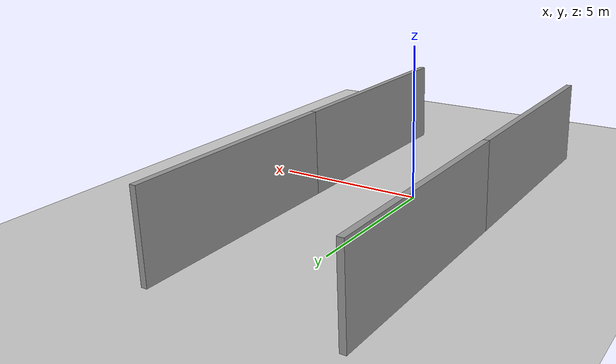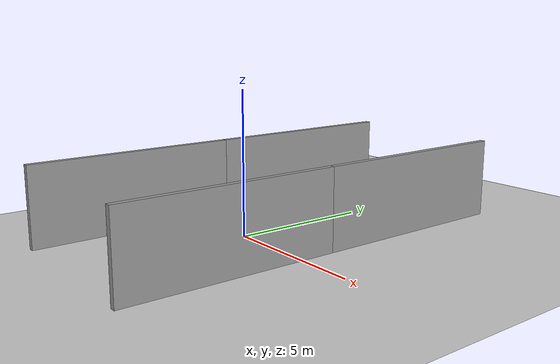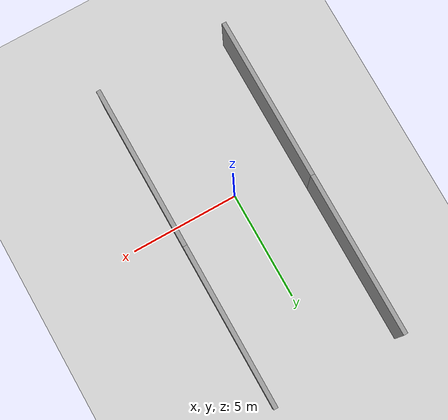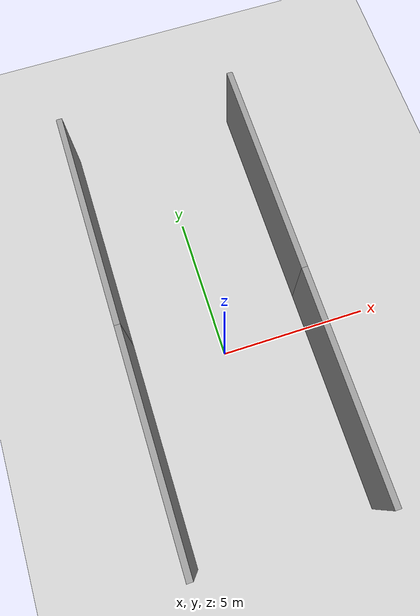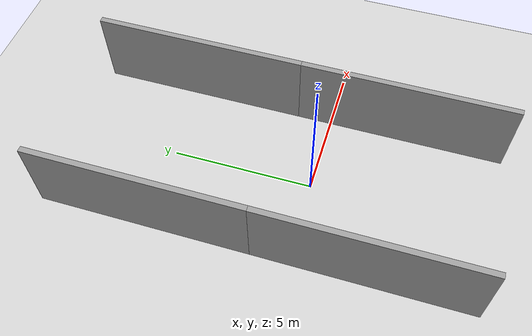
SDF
<sdf version="1.4">
 <world name="default">
  <include><uri>model://ground_plane</uri></include>
  <include><uri>model://sun</uri></include>
  <include><uri>model://grey_wall</uri><pose>-3.0 5.0 0 0 0 1.570796</pose></include>
  <include><uri>model://grey_wall</uri><pose>-3.0 -2.5 0 0 0 1.570796</pose></include>
  <include><uri>model://grey_wall</uri><pose>3.0 5.0 0 0 0 1.570796</pose></include>
  <include><uri>model://grey_wall</uri><pose>3.0 -2.5 0 0 0 1.570796</pose></include>
  <arg name="robot_configuration" default="$(find segbot_bringup)/launch/includes/auxiliary.segbot_v1.hokuyo_only.launch.xml"/>
  <arg name="use_full_gazebo_model" default="true"/>
  <group ns="robot1">
   <include file="segbot_mobile_base.launch">
    <arg name="robotid" value="robot1"/>
    <arg name="configuration_file" value="$(arg robot_configuration)"/>
    <arg name="x" value="0"/>
    <arg name="y" value="0"/>
    <arg name="tf_prefix" value="robot1"/>
    <arg name="launch_localization" value="true"/>
    <arg name="launch_move_base" value="true"/>
    <arg name="use_full_gazebo_model" value="$(arg use_full_gazebo_model)"/>
   </include>
  </group>
 </world>
</sdf>

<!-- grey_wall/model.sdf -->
<sdf version="1.5">
  <model name="grey_wall">
    <static>true</static>
    <link name="link">
      <pose>0 0 1.4 0 0 0</pose>
      <collision name="collision">
        <geometry>
          <box>
            <size>7.5 0.2 2.8</size>
          </box>
        </geometry>
      </collision>
      <visual name="visual">
        <cast_shadows>false</cast_shadows>
        <geometry>
          <box>
            <size>7.5 0.2 2.8</size>
          </box>
        </geometry>
        <material>
          <script>
            <uri>model://../model_source/models/grey_wall/materials/scripts</uri>
            <uri>model://../model_source/models/grey_wall/materials/textures</uri>
            <name>vrc/grey_wall</name>
          </script>
        </material>
      </visual>
    </link>
  </model>
</sdf>
